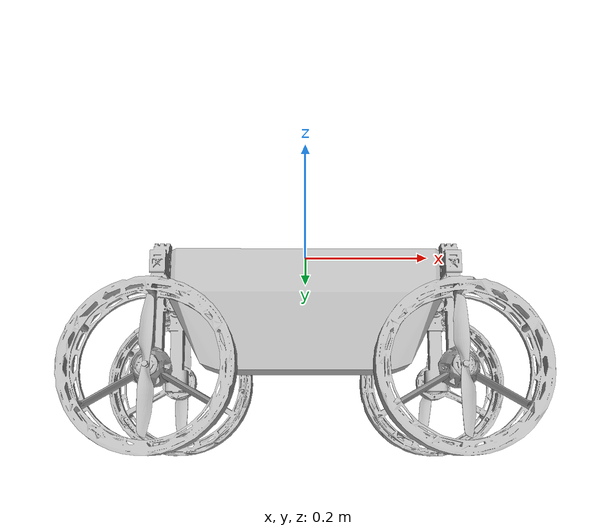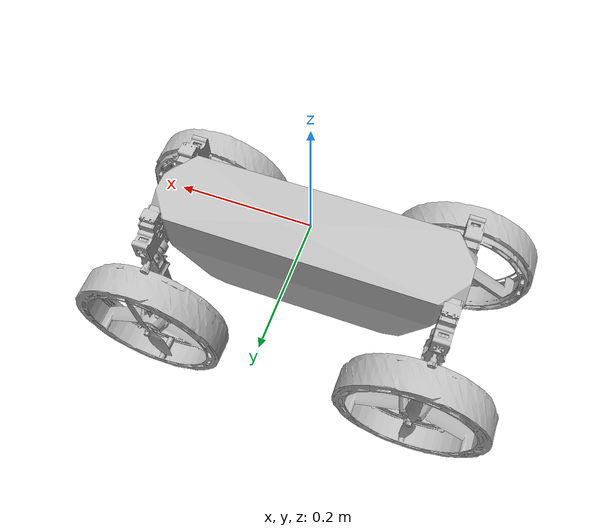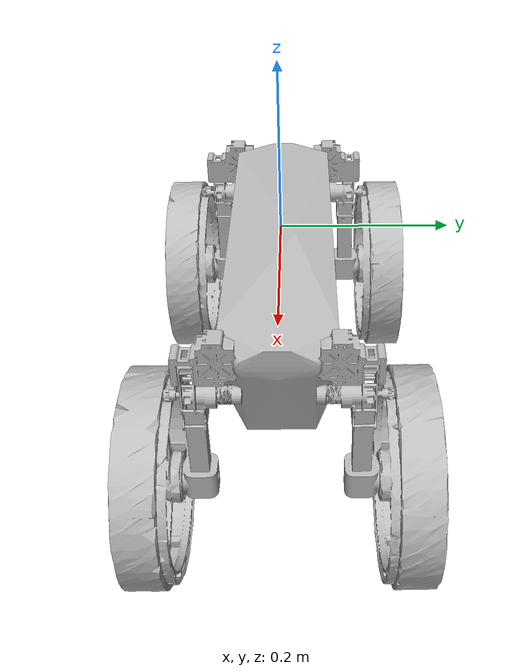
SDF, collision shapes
<sdf version='1.7'>
  <model name='m4assembly'>
    <link name='dummy'>
      <inertial>
        <pose>0.00014 -1.3e-05 -0.067235 0 -0 0</pose>
        <mass>1.054</mass>
        <inertia>
          <ixx>0.00066925</ixx>
          <ixy>-1.7138e-07</ixy>
          <ixz>8.4179e-07</ixz>
          <iyy>0.0060916</iyy>
          <iyz>-5.4732e-08</iyz>
          <izz>0.006372</izz>
        </inertia>
      </inertial>
      <collision name='dummy_fixed_joint_lump__base_link_collision'>
        <pose>0 0 0 0 -0 0</pose>
        <geometry>
          <mesh>
            <scale>1 1 1</scale>
            <uri>model://m4assembly/meshes/col/base_link.STL</uri>
          </mesh>
        </geometry>
      </collision>
      <visual name='dummy_fixed_joint_lump__base_link_visual'>
        <pose>0 0 0 0 -0 0</pose>
        <geometry>
          <mesh>
            <scale>1 1 1</scale>
            <uri>model://m4assembly/meshes/base_link.STL</uri>
          </mesh>
        </geometry>
      </visual>
    </link>
    <joint name='front_left_hip_joint' type='revolute'>
      <pose relative_to='dummy'>0.22099 0.0323 -0.02605 1.5708 -0.006693 1.5708</pose>
      <parent>dummy</parent>
      <child>front_left_hip</child>
      <axis>
        <xyz>0 0 1</xyz>
        <limit>
          <lower>0</lower>
          <upper>1.571</upper>
          <effort>10.5</effort>
          <velocity>1.57</velocity>
        </limit>
        <dynamics>
          <spring_reference>0</spring_reference>
          <spring_stiffness>0</spring_stiffness>
        </dynamics>
      </axis>
    </joint>
    <link name='front_left_hip'>
      <pose relative_to='front_left_hip_joint'>0 0 0 0 -0 0</pose>
      <inertial>
        <pose>0.051089 -0.07137 0.002321 0 -0 0</pose>
        <mass>0.272061</mass>
        <inertia>
          <ixx>0.000498988</ixx>
          <ixy>0.000115442</ixy>
          <ixz>-6.41873e-07</ixz>
          <iyy>9.68475e-05</iyy>
          <iyz>3.75397e-06</iyz>
          <izz>0.000565441</izz>
        </inertia>
      </inertial>
      <collision name='front_left_hip_collision'>
        <pose>0 0 0 0 -0 0</pose>
        <geometry>
          <mesh>
            <scale>1 1 1</scale>
            <uri>model://m4assembly/meshes/col/front_left_hip.STL</uri>
          </mesh>
        </geometry>
      </collision>
      <collision name='front_left_hip_fixed_joint_lump__front_left_leg_collision_1'>
        <pose>0.0611 -0.006895 0.002514 3.14159 -1.5708 0</pose>
        <geometry>
          <mesh>
            <scale>1 1 1</scale>
            <uri>model://m4assembly/meshes/col/front_left_leg.STL</uri>
          </mesh>
        </geometry>
      </collision>
      <visual name='front_left_hip_visual'>
        <pose>0 0 0 0 -0 0</pose>
        <geometry>
          <mesh>
            <scale>1 1 1</scale>
            <uri>model://m4assembly/meshes/front_left_hip.STL</uri>
          </mesh>
        </geometry>
      </visual>
      <visual name='front_left_hip_fixed_joint_lump__front_left_leg_visual_1'>
        <pose>0.0611 -0.006895 0.002514 3.14159 -1.5708 0</pose>
        <geometry>
          <mesh>
            <scale>1 1 1</scale>
            <uri>model://m4assembly/meshes/front_left_leg.STL</uri>
          </mesh>
        </geometry>
      </visual>
    </link>
    <joint name='front_left_blade_joint' type='revolute'>
      <pose relative_to='front_left_hip'>0.123621 -0.168895 0.002515 1.57079 -1.57079 1.57079</pose>
      <parent>front_left_hip</parent>
      <child>front_left_blade</child>
      <axis>
        <xyz>0 0 1</xyz>
        <limit>
          <effort>200</effort>
          <velocity>200</velocity>
          <lower>-1e+16</lower>
          <upper>1e+16</upper>
        </limit>
        <dynamics>
          <spring_reference>0</spring_reference>
          <spring_stiffness>0</spring_stiffness>
        </dynamics>
      </axis>
    </joint>
    <link name='front_left_blade'>
      <pose relative_to='front_left_blade_joint'>0 0 0 0 -0 0</pose>
      <inertial>
        <pose>-0 -0 0.006902 0 -0 0</pose>
        <mass>0.00610283</mass>
        <inertia>
          <ixx>4.65427e-06</ixx>
          <ixy>6.89624e-07</ixy>
          <ixz>-5.02014e-13</ixz>
          <iyy>2.62287e-07</iyy>
          <iyz>-7.87853e-13</iyz>
          <izz>4.86249e-06</izz>
        </inertia>
      </inertial>
      <collision name='front_left_blade_collision'>
        <pose>0 0 0 0 -0 0</pose>
        <geometry>
          <mesh>
            <scale>1 1 1</scale>
            <uri>model://m4assembly/meshes/col/front_left_blade.STL</uri>
          </mesh>
        </geometry>
      </collision>
      <visual name='front_left_blade_visual'>
        <pose>0 0 0 0 -0 0</pose>
        <geometry>
          <mesh>
            <scale>1 1 1</scale>
            <uri>model://m4assembly/meshes/front_left_blade.STL</uri>
          </mesh>
        </geometry>
      </visual>
    </link>
    <joint name='front_left_wheel_joint' type='revolute'>
      <pose relative_to='front_left_hip'>0.073621 -0.168895 0.002515 -1.57079 -1.57079 1.57079</pose>
      <parent>front_left_hip</parent>
      <child>front_left_wheel</child>
      <axis>
        <xyz>0 0 -1</xyz>
        <limit>
          <effort>200</effort>
          <velocity>200</velocity>
          <lower>-1e+16</lower>
          <upper>1e+16</upper>
        </limit>
        <dynamics>
          <spring_reference>0</spring_reference>
          <spring_stiffness>0</spring_stiffness>
        </dynamics>
      </axis>
    </joint>
    <link name='front_left_wheel'>
      <pose relative_to='front_left_wheel_joint'>0 0 0 0 -0 0</pose>
      <inertial>
        <pose>0 -2e-06 -0.028489 0 -0 0</pose>
        <mass>0.447368</mass>
        <inertia>
          <ixx>0.00104262</ixx>
          <ixy>2.7422e-10</ixy>
          <ixz>3.5405e-11</ixz>
          <iyy>0.00104271</iyy>
          <iyz>-3.25695e-11</iyz>
          <izz>0.00200352</izz>
        </inertia>
      </inertial>
      <collision name='front_left_wheel_collision'>
        <pose>0 0 0 0 -0 0</pose>
        <geometry>
          <mesh>
            <scale>1 1 1</scale>
            <uri>model://m4assembly/meshes/col/front_left_wheel.STL</uri>
          </mesh>
        </geometry>
      </collision>
      <visual name='front_left_wheel_visual'>
        <pose>0 0 0 0 -0 0</pose>
        <geometry>
          <mesh>
            <scale>1 1 1</scale>
            <uri>model://m4assembly/meshes/front_left_wheel.STL</uri>
          </mesh>
        </geometry>
      </visual>
    </link>
    <joint name='front_right_hip_joint' type='revolute'>
      <pose relative_to='dummy'>0.22099 -0.0323 -0.02605 1.5708 -0.004683 -1.5708</pose>
      <parent>dummy</parent>
      <child>front_right_hip</child>
      <axis>
        <xyz>0 0 1</xyz>
        <limit>
          <lower>0</lower>
          <upper>1.571</upper>
          <effort>10.5</effort>
          <velocity>1.57</velocity>
        </limit>
        <dynamics>
          <spring_reference>0</spring_reference>
          <spring_stiffness>0</spring_stiffness>
        </dynamics>
      </axis>
    </joint>
    <link name='front_right_hip'>
      <pose relative_to='front_right_hip_joint'>0 0 0 0 -0 0</pose>
      <inertial>
        <pose>0.051088 -0.071369 -0.001624 0 -0 0</pose>
        <mass>0.272061</mass>
        <inertia>
          <ixx>0.000498953</ixx>
          <ixy>0.000115441</ixy>
          <ixz>8.2873e-07</ixz>
          <iyy>9.68229e-05</iyy>
          <iyz>-1.74533e-06</iyz>
          <izz>0.000565429</izz>
        </inertia>
      </inertial>
      <collision name='front_right_hip_collision'>
        <pose>0 0 0 0 -0 0</pose>
        <geometry>
          <mesh>
            <scale>1 1 1</scale>
            <uri>model://m4assembly/meshes/col/front_right_hip.STL</uri>
          </mesh>
        </geometry>
      </collision>
      <collision name='front_right_hip_fixed_joint_lump__front_right_leg_collision_1'>
        <pose>0.0611 -0.006895 -0.002164 1.5708 1.5656 -1.5708</pose>
        <geometry>
          <mesh>
            <scale>1 1 1</scale>
            <uri>model://m4assembly/meshes/col/front_right_leg.STL</uri>
          </mesh>
        </geometry>
      </collision>
      <visual name='front_right_hip_visual'>
        <pose>0 0 0 0 -0 0</pose>
        <geometry>
          <mesh>
            <scale>1 1 1</scale>
            <uri>model://m4assembly/meshes/front_right_hip.STL</uri>
          </mesh>
        </geometry>
      </visual>
      <visual name='front_right_hip_fixed_joint_lump__front_right_leg_visual_1'>
        <pose>0.0611 -0.006895 -0.002164 1.5708 1.5656 -1.5708</pose>
        <geometry>
          <mesh>
            <scale>1 1 1</scale>
            <uri>model://m4assembly/meshes/front_right_leg.STL</uri>
          </mesh>
        </geometry>
      </visual>
    </link>
    <joint name='front_right_blade_joint' type='revolute'>
      <pose relative_to='front_right_hip'>0.126526 -0.168893 -0.001323 1.56911 1.57079 1.56911</pose>
      <parent>front_right_hip</parent>
      <child>front_right_blade</child>
      <axis>
        <xyz>0 0 1</xyz>
        <limit>
          <effort>200</effort>
          <velocity>200</velocity>
          <lower>-1e+16</lower>
          <upper>1e+16</upper>
        </limit>
        <dynamics>
          <spring_reference>0</spring_reference>
          <spring_stiffness>0</spring_stiffness>
        </dynamics>
      </axis>
    </joint>
    <link name='front_right_blade'>
      <pose relative_to='front_right_blade_joint'>0 0 0 0 -0 0</pose>
      <inertial>
        <pose>0 1e-06 0.003996 0 -0 0</pose>
        <mass>0.0061029</mass>
        <inertia>
          <ixx>4.75885e-06</ixx>
          <ixy>7.08409e-08</ixy>
          <ixz>-8.4083e-14</ixz>
          <iyy>1.5765e-07</iyy>
          <iyz>8.2372e-13</iyz>
          <izz>4.86243e-06</izz>
        </inertia>
      </inertial>
      <collision name='front_right_blade_collision'>
        <pose>0 0 0 0 -0 0</pose>
        <geometry>
          <mesh>
            <scale>1 1 1</scale>
            <uri>model://m4assembly/meshes/col/front_right_blade.STL</uri>
          </mesh>
        </geometry>
      </collision>
      <visual name='front_right_blade_visual'>
        <pose>0 0 0 0 -0 0</pose>
        <geometry>
          <mesh>
            <scale>1 1 1</scale>
            <uri>model://m4assembly/meshes/front_right_blade.STL</uri>
          </mesh>
        </geometry>
      </visual>
    </link>
    <joint name='front_right_wheel_joint' type='revolute'>
      <pose relative_to='front_right_hip'>0.076526 -0.168893 -0.001323 1.56911 1.57079 1.56911</pose>
      <parent>front_right_hip</parent>
      <child>front_right_wheel</child>
      <axis>
        <xyz>0 0 -1</xyz>
        <limit>
          <effort>200</effort>
          <velocity>200</velocity>
          <lower>-1e+16</lower>
          <upper>1e+16</upper>
        </limit>
        <dynamics>
          <spring_reference>0</spring_reference>
          <spring_stiffness>0</spring_stiffness>
        </dynamics>
      </axis>
    </joint>
    <link name='front_right_wheel'>
      <pose relative_to='front_right_wheel_joint'>0 0 0 0 -0 0</pose>
      <inertial>
        <pose>1e-06 0 0.025584 0 -0 0</pose>
        <mass>0.447368</mass>
        <inertia>
          <ixx>0.00104269</ixx>
          <ixy>3.91619e-08</ixy>
          <ixz>3.50659e-11</ixz>
          <iyy>0.00104264</iyy>
          <iyz>3.24294e-11</iyz>
          <izz>0.00200352</izz>
        </inertia>
      </inertial>
      <collision name='front_right_wheel_collision'>
        <pose>0 0 0 0 -0 0</pose>
        <geometry>
          <mesh>
            <scale>1 1 1</scale>
            <uri>model://m4assembly/meshes/col/front_right_wheel.STL</uri>
          </mesh>
        </geometry>
      </collision>
      <visual name='front_right_wheel_visual'>
        <pose>0 0 0 0 -0 0</pose>
        <geometry>
          <mesh>
            <scale>1 1 1</scale>
            <uri>model://m4assembly/meshes/front_right_wheel.STL</uri>
          </mesh>
        </geometry>
      </visual>
    </link>
    <joint name='rear_left_hip_joint' type='revolute'>
      <pose relative_to='dummy'>-0.2231 0.0323 -0.02605 1.5708 -0.009901 1.5708</pose>
      <parent>dummy</parent>
      <child>rear_left_hip</child>
      <axis>
        <xyz>0 0 1</xyz>
        <limit>
          <lower>0</lower>
          <upper>1.571</upper>
          <effort>10.5</effort>
          <velocity>1.57</velocity>
        </limit>
        <dynamics>
          <spring_reference>0</spring_reference>
          <spring_stiffness>0</spring_stiffness>
        </dynamics>
      </axis>
    </joint>
    <link name='rear_left_hip'>
      <pose relative_to='rear_left_hip_joint'>0 0 0 0 -0 0</pose>
      <inertial>
        <pose>0.051089 -0.071359 0.001354 0 -0 0</pose>
        <mass>0.272061</mass>
        <inertia>
          <ixx>0.00049885</ixx>
          <ixy>0.000115435</ixy>
          <ixz>-5.24473e-07</ixz>
          <iyy>9.68504e-05</iyy>
          <iyz>3.75201e-06</iyz>
          <izz>0.000565305</izz>
        </inertia>
      </inertial>
      <collision name='rear_left_hip_collision'>
        <pose>0 0 0 0 -0 0</pose>
        <geometry>
          <mesh>
            <scale>1 1 1</scale>
            <uri>model://m4assembly/meshes/col/rear_left_hip.STL</uri>
          </mesh>
        </geometry>
      </collision>
      <collision name='rear_left_hip_fixed_joint_lump__rear_left_leg_collision_1'>
        <pose>0.0611 -0.006895 -5e-05 1.5708 -1.5526 1.5708</pose>
        <geometry>
          <mesh>
            <scale>1 1 1</scale>
            <uri>model://m4assembly/meshes/col/rear_left_leg.STL</uri>
          </mesh>
        </geometry>
      </collision>
      <visual name='rear_left_hip_visual'>
        <pose>0 0 0 0 -0 0</pose>
        <geometry>
          <mesh>
            <scale>1 1 1</scale>
            <uri>model://m4assembly/meshes/rear_left_hip.STL</uri>
          </mesh>
        </geometry>
      </visual>
      <visual name='rear_left_hip_fixed_joint_lump__rear_left_leg_visual_1'>
        <pose>0.0611 -0.006895 -5e-05 1.5708 -1.5526 1.5708</pose>
        <geometry>
          <mesh>
            <scale>1 1 1</scale>
            <uri>model://m4assembly/meshes/rear_left_leg.STL</uri>
          </mesh>
        </geometry>
      </visual>
    </link>
    <joint name='rear_left_blade_joint' type='revolute'>
      <pose relative_to='rear_left_hip'>0.12223 -0.168868 0.002898 -1.58288 -1.57077 -1.56861</pose>
      <parent>rear_left_hip</parent>
      <child>rear_left_blade</child>
      <axis>
        <xyz>0 -0.0099 0.99995</xyz>
        <limit>
          <effort>200</effort>
          <velocity>200</velocity>
          <lower>-1e+16</lower>
          <upper>1e+16</upper>
        </limit>
        <dynamics>
          <spring_reference>0</spring_reference>
          <spring_stiffness>0</spring_stiffness>
        </dynamics>
      </axis>
    </joint>
    <link name='rear_left_blade'>
      <pose relative_to='rear_left_blade_joint'>0 0 0 0 -0 0</pose>
      <inertial>
        <pose>-0 -8.2e-05 0.008295 0 -0 0</pose>
        <mass>0.00610275</mass>
        <inertia>
          <ixx>4.75952e-06</ixx>
          <ixy>-3.96883e-08</ixy>
          <ixz>-3.9324e-10</ixz>
          <iyy>1.57362e-07</iyy>
          <iyz>-4.65847e-08</iyz>
          <izz>4.86189e-06</izz>
        </inertia>
      </inertial>
      <collision name='rear_left_blade_collision'>
        <pose>0 0 0 0 -0 0</pose>
        <geometry>
          <mesh>
            <scale>1 1 1</scale>
            <uri>model://m4assembly/meshes/col/rear_left_blade.STL</uri>
          </mesh>
        </geometry>
      </collision>
      <visual name='rear_left_blade_visual'>
        <pose>0 0 0 0 -0 0</pose>
        <geometry>
          <mesh>
            <scale>1 1 1</scale>
            <uri>model://m4assembly/meshes/rear_left_blade.STL</uri>
          </mesh>
        </geometry>
      </visual>
    </link>
    <joint name='rear_left_wheel_joint' type='revolute'>
      <pose relative_to='rear_left_hip'>0.07223 -0.168868 0.002898 1.56861 -1.57077 -1.56861</pose>
      <parent>rear_left_hip</parent>
      <child>rear_left_wheel</child>
      <axis>
        <xyz>0 0 -1</xyz>
        <limit>
          <effort>200</effort>
          <velocity>200</velocity>
          <lower>-1e+16</lower>
          <upper>1e+16</upper>
        </limit>
        <dynamics>
          <spring_reference>0</spring_reference>
          <spring_stiffness>0</spring_stiffness>
        </dynamics>
      </axis>
    </joint>
    <link name='rear_left_wheel'>
      <pose relative_to='rear_left_wheel_joint'>0 0 0 0 -0 0</pose>
      <inertial>
        <pose>-1e-06 0 -0.029883 0 -0 0</pose>
        <mass>0.447368</mass>
        <inertia>
          <ixx>0.00104269</ixx>
          <ixy>-3.91603e-08</ixy>
          <ixz>3.60415e-11</ixz>
          <iyy>0.00104264</iyy>
          <iyz>-3.26124e-11</iyz>
          <izz>0.00200352</izz>
        </inertia>
      </inertial>
      <collision name='rear_left_wheel_collision'>
        <pose>0 0 0 0 -0 0</pose>
        <geometry>
          <mesh>
            <scale>1 1 1</scale>
            <uri>model://m4assembly/meshes/col/rear_left_wheel.STL</uri>
          </mesh>
        </geometry>
      </collision>
      <visual name='rear_left_wheel_visual'>
        <pose>0 0 0 0 -0 0</pose>
        <geometry>
          <mesh>
            <scale>1 1 1</scale>
            <uri>model://m4assembly/meshes/rear_left_wheel.STL</uri>
          </mesh>
        </geometry>
      </visual>
    </link>
    <joint name='rear_right_hip_joint' type='revolute'>
      <pose relative_to='dummy'>-0.2235 -0.0323 -0.02605 1.5708 -0.003248 -1.5708</pose>
      <parent>dummy</parent>
      <child>rear_right_hip</child>
      <axis>
        <xyz>0 0 1</xyz>
        <limit>
          <lower>0</lower>
          <upper>1.571</upper>
          <effort>10.5</effort>
          <velocity>1.57</velocity>
        </limit>
        <dynamics>
          <spring_reference>0</spring_reference>
          <spring_stiffness>0</spring_stiffness>
        </dynamics>
      </axis>
    </joint>
    <link name='rear_right_hip'>
      <pose relative_to='rear_right_hip_joint'>0 0 0 0 -0 0</pose>
      <inertial>
        <pose>0.051088 -0.07137 -0.000193 0 -0 0</pose>
        <mass>0.272061</mass>
        <inertia>
          <ixx>0.000498988</ixx>
          <ixy>0.00011544</ixy>
          <ixz>-6.41862e-07</ixz>
          <iyy>9.68468e-05</iyy>
          <iyz>3.75398e-06</iyz>
          <izz>0.00056544</izz>
        </inertia>
      </inertial>
      <collision name='rear_right_hip_collision'>
        <pose>0 0 0 0 -0 0</pose>
        <geometry>
          <mesh>
            <scale>1 1 1</scale>
            <uri>model://m4assembly/meshes/col/rear_right_hip.STL</uri>
          </mesh>
        </geometry>
      </collision>
      <collision name='rear_right_hip_fixed_joint_lump__rear_right_leg_collision_1'>
        <pose>0.0611 -0.006895 0 -3.14159 1.5708 0</pose>
        <geometry>
          <mesh>
            <scale>1 1 1</scale>
            <uri>model://m4assembly/meshes/col/rear_right_leg.STL</uri>
          </mesh>
        </geometry>
      </collision>
      <visual name='rear_right_hip_visual'>
        <pose>0 0 0 0 -0 0</pose>
        <geometry>
          <mesh>
            <scale>1 1 1</scale>
            <uri>model://m4assembly/meshes/rear_right_hip.STL</uri>
          </mesh>
        </geometry>
      </visual>
      <visual name='rear_right_hip_fixed_joint_lump__rear_right_leg_visual_1'>
        <pose>0.0611 -0.006895 0 -3.14159 1.5708 0</pose>
        <geometry>
          <mesh>
            <scale>1 1 1</scale>
            <uri>model://m4assembly/meshes/rear_right_leg.STL</uri>
          </mesh>
        </geometry>
      </visual>
    </link>
    <joint name='rear_right_blade_joint' type='revolute'>
      <pose relative_to='rear_right_hip'>0.12653 -0.168895 -0 -3.14158 1.57079 3.14159</pose>
      <parent>rear_right_hip</parent>
      <child>rear_right_blade</child>
      <axis>
        <xyz>0 0 1</xyz>
        <limit>
          <effort>200</effort>
          <velocity>200</velocity>
          <lower>-1e+16</lower>
          <upper>1e+16</upper>
        </limit>
        <dynamics>
          <spring_reference>0</spring_reference>
          <spring_stiffness>0</spring_stiffness>
        </dynamics>
      </axis>
    </joint>
    <link name='rear_right_blade'>
      <pose relative_to='rear_right_blade_joint'>0 0 0 0 -0 0</pose>
      <inertial>
        <pose>0 0 0.003992 0 -0 0</pose>
        <mass>0.0061027</mass>
        <inertia>
          <ixx>4.75712e-06</ixx>
          <ixy>-1.12007e-07</ixy>
          <ixz>2.24624e-13</ixz>
          <iyy>1.59284e-07</iyy>
          <iyz>3.54828e-13</iyz>
          <izz>4.86234e-06</izz>
        </inertia>
      </inertial>
      <collision name='rear_right_blade_collision'>
        <pose>0 0 0 0 -0 0</pose>
        <geometry>
          <mesh>
            <scale>1 1 1</scale>
            <uri>model://m4assembly/meshes/col/rear_right_blade.STL</uri>
          </mesh>
        </geometry>
      </collision>
      <visual name='rear_right_blade_visual'>
        <pose>0 0 0 0 -0 0</pose>
        <geometry>
          <mesh>
            <scale>1 1 1</scale>
            <uri>model://m4assembly/meshes/rear_right_blade.STL</uri>
          </mesh>
        </geometry>
      </visual>
    </link>
    <joint name='rear_right_wheel_joint' type='revolute'>
      <pose relative_to='rear_right_hip'>0.07653 -0.168895 -0 -3.14158 1.57079 3.14159</pose>
      <parent>rear_right_hip</parent>
      <child>rear_right_wheel</child>
      <axis>
        <xyz>0 0 -1</xyz>
        <limit>
          <effort>200</effort>
          <velocity>200</velocity>
          <lower>-1e+16</lower>
          <upper>1e+16</upper>
        </limit>
        <dynamics>
          <spring_reference>0</spring_reference>
          <spring_stiffness>0</spring_stiffness>
        </dynamics>
      </axis>
    </joint>
    <link name='rear_right_wheel'>
      <pose relative_to='rear_right_wheel_joint'>0 0 0 0 -0 0</pose>
      <inertial>
        <pose>-0 -2e-06 0.02558 0 -0 0</pose>
        <mass>0.447368</mass>
        <inertia>
          <ixx>0.00104262</ixx>
          <ixy>-2.73562e-10</ixy>
          <ixz>3.48031e-11</ixz>
          <iyy>0.00104271</iyy>
          <iyz>3.22929e-11</iyz>
          <izz>0.00200352</izz>
        </inertia>
      </inertial>
      <collision name='rear_right_wheel_collision'>
        <pose>0 0 0 0 -0 0</pose>
        <geometry>
          <mesh>
            <scale>1 1 1</scale>
            <uri>model://m4assembly/meshes/col/rear_right_wheel.STL</uri>
          </mesh>
        </geometry>
      </collision>
      <visual name='rear_right_wheel_visual'>
        <pose>0 0 0 0 -0 0</pose>
        <geometry>
          <mesh>
            <scale>1 1 1</scale>
            <uri>model://m4assembly/meshes/rear_right_wheel.STL</uri>
          </mesh>
        </geometry>
      </visual>
    </link>
    <static>0</static>
    <plugin name='gazebo_ros_control' filename='libgazebo_ros_control.so'>
      <robotNamespace>/m4assembly</robotNamespace>
    </plugin>
  </model>
</sdf>
